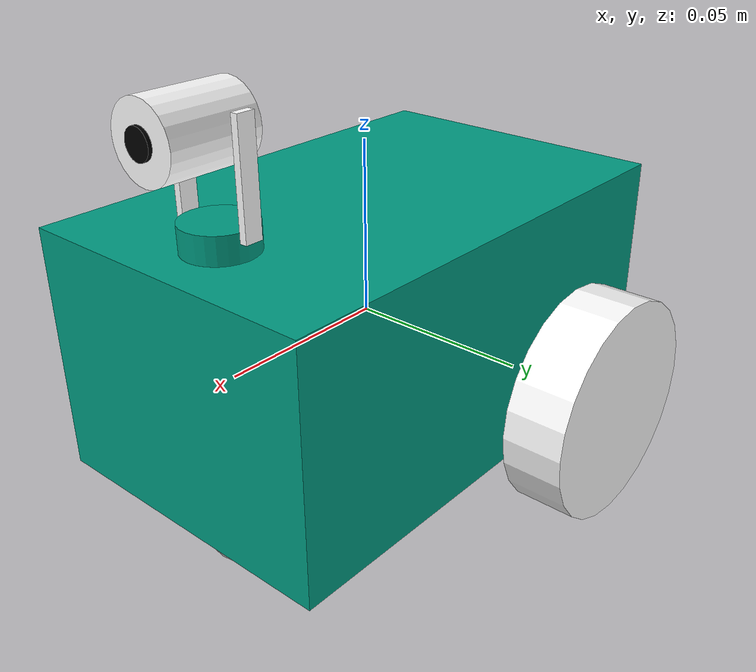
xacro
<?xml version="1.0"?>

<robot name="smart_diffbot" xmlns:xacro="http://ros.org/wiki/xacro">

  <xacro:arg name="sim" default="true"/>

  <!-- Utils -->
  <xacro:include filename="$(find smart_diffbot_description)/model/urdf/utils.urdf.xacro" />

  <!-- Robot model -->
  <xacro:include filename="$(find smart_diffbot_description)/model/urdf/model.urdf.xacro" />

  <xacro:if value="$(arg sim)">
    <!-- Simulation interface -->
    <xacro:include filename="$(find smart_diffbot_description)/model/urdf/sim_interface.urdf.xacro" />
  </xacro:if>

  <xacro:unless value="$(arg sim)">
    <!-- Real hardware -->
    <xacro:include filename="$(find smart_diffbot_description)/model/urdf/hardware_interface.urdf.xacro" />
  </xacro:unless>

</robot>

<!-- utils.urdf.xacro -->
<robot xmlns:xacro="http://ros.org/wiki/xacro">

  <!-- Materials -->
  <material name="white">
    <color rgba="1 1 1 1"/>
  </material>

  <material name="red">
    <color rgba="1 0 0 1"/>
  </material>

  <material name="green">
    <color rgba="0 1 0 1"/>
  </material>

  <material name="blue">
    <color rgba="0 0 1 1"/>
  </material>

  <material name="yellow">
    <color rgba="1 1 0 1"/>
  </material>

  <material name="black">
    <color rgba="0 0 0 1"/>
  </material>

  <material name="grey">
    <color rgba="0.5 0.5 0.5 1"/>
  </material>

  <!-- Inertia macros -->
  <xacro:macro name="box_inertia" params="m w h d">
    <inertial>
      <origin xyz="0 0 0" rpy="${pi/2} 0 ${pi/2}"/>
      <mass value="${m}"/>
      <inertia ixx="${(m/12) * (h*h + d*d)}" ixy="0.0" ixz="0.0" iyy="${(m/12) * (w*w + d*d)}" iyz="0.0" izz="${(m/12) * (w*w + h*h)}"/>
    </inertial>
  </xacro:macro>

  <xacro:macro name="cylinder_inertia" params="m r h">
    <inertial>
      <origin xyz="0 0 0" rpy="${pi/2} 0 0" />
      <mass value="${m}"/>
      <inertia ixx="${(m/12) * (3*r*r + h*h)}" ixy = "0" ixz = "0" iyy="${(m/12) * (3*r*r + h*h)}" iyz = "0" izz="${(m/2) * (r*r)}"/>
    </inertial>
  </xacro:macro>

  <xacro:macro name="sphere_inertia" params="m r">
    <inertial>
      <origin xyz="0 0 0" rpy="0 0 0" />
      <mass value="${m}"/>
      <inertia ixx="${(2*m/5) * (r*r)}" ixy = "0" ixz = "0" iyy="${(2*m/5) * (r*r)}" iyz = "0" izz="${(2*m/5) * (r*r)}"/>
    </inertial>
  </xacro:macro>

  <!-- Wheel macro -->
  <xacro:macro name="wheel" params="name width radius mass color">
    <link name="${name}">
      <visual>
        <origin xyz="0 0 0" rpy="${pi/2} 0 0"/>
        <geometry>
          <cylinder length="${width}" radius="${radius}"/>
        </geometry>
        <material name="${color}" />
      </visual>
      <collision>
        <origin xyz="0 0 0" rpy="${pi/2} 0 0"/>
        <geometry>
          <cylinder length="${width}" radius="${radius}"/>
        </geometry>
      </collision>
    <xacro:cylinder_inertia m="${mass}" r="${radius}" h="${width}"/>
    </link>
  </xacro:macro>

</robot>

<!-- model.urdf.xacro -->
<robot xmlns:xacro="http://ros.org/wiki/xacro">

  <!-- Camera model -->
  <xacro:include filename="$(find smart_diffbot_description)/model/urdf/camera.urdf.xacro" />

  <!-- Properties -->
  <xacro:property name="base_length" value="0.1415"/>
  <xacro:property name="base_width" value="0.09"/>
  <xacro:property name="base_height" value="0.07"/>
  <xacro:property name="wheel_radius" value="0.033"/>
  <xacro:property name="wheel_width" value="0.018"/>
  <xacro:property name="wheel_suspension" value="0.01"/>
  <xacro:property name="wheel_spacing" value="0.002"/>
  <xacro:property name="caster_radius" value="0.015"/>

  <!-- Links -->
  <link name="base_link">
    <visual>
      <origin xyz="0 0 0" rpy="0 0 0"/>
      <geometry>
        <box size="${base_length} ${base_width} ${base_height}" />
      </geometry>
      <material name="SaxionGreen">
        <color rgba="0 0.612 0.510 1"/>
      </material>
    </visual>
    <collision>
      <origin xyz="0 0 0" rpy="0 0 0"/>
      <geometry>
        <box size="${base_length} ${base_width} ${base_height}" />
      </geometry>
    </collision>
    <xacro:box_inertia m="30.0" w="${base_width}" d="${base_length}" h="${base_height}"/>
  </link>

  <link name="camera_mount"/>
  <xacro:camera name="camera" parent="camera_mount"/>

  <!-- Other sensor links (not visualized) -->
  <link name="imu_link"/>
  <link name="navsat_link"/>

  <!-- Wheel links -->
  <xacro:wheel name="left_wheel" width="${wheel_width}" radius="${wheel_radius}" mass="1.0" color="white"/>
  <xacro:wheel name="right_wheel" width="${wheel_width}" radius="${wheel_radius}" mass="1.0" color="white"/>

  <link name="caster">
    <visual>
      <origin xyz="0 0 0" rpy="0 0 0"/>
      <geometry>
        <sphere radius="${caster_radius}"/>
      </geometry>
      <material name="white" />
    </visual>
    <collision>
      <origin xyz="0 0 0" rpy="0 0 0"/>
      <geometry>
        <sphere radius="${caster_radius}"/>
      </geometry>
    </collision>
    <xacro:sphere_inertia m="0.25" r="${caster_radius}"/>
  </link>

  <!-- Joints -->
  <joint name="camera_mount_joint" type="fixed">
    <origin xyz="${base_length/2.0-camera_radius*2.0} 0 ${base_height/2.0}" rpy="0 0 0"/>
    <parent link="base_link"/>
    <child link="camera_mount"/>
  </joint>

  <joint name="imu_joint" type="fixed">
    <origin xyz="0 0 0" rpy="0 0 0"/>
    <parent link="base_link"/>
    <child link="imu_link"/>
  </joint>

  <joint name="navsat_joint" type="fixed">
    <origin xyz="0 0 0" rpy="0 0 0"/>
    <parent link="base_link"/>
    <child link="navsat_link"/>
  </joint>

  <joint name="left_wheel_joint" type="continuous">
    <parent link="base_link"/>
    <child link="left_wheel"/>
    <origin xyz="${-base_length/4.0} ${base_width/2.0 + wheel_width/2.0 + wheel_spacing} ${-base_height/2.0 + wheel_suspension}" rpy="0 0 0"/>
    <axis xyz="0 1 0" rpy="0 0 0"/>
  </joint>

  <joint name="right_wheel_joint" type="continuous">
    <parent link="base_link"/>
    <child link="right_wheel"/>
    <origin xyz="${-base_length/4.0} -${base_width/2.0 + wheel_width/2.0 + wheel_spacing} ${-base_height/2.0 + wheel_suspension}" rpy="0 0 0"/>
    <axis xyz="0 1 0" rpy="0 0 0"/>
  </joint>

  <joint name="caster_joint" type="fixed">
    <parent link="base_link"/>
    <child link="caster"/>
    <origin xyz="${base_length/3.0} 0 ${-base_height/2.0 + wheel_suspension - wheel_radius + caster_radius}" rpy="0 0 0"/>
  </joint>

</robot>

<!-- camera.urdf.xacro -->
<robot xmlns:xacro="http://ros.org/wiki/xacro">

  <xacro:property name="camera_link_width" value="0.002"/>
  <xacro:property name="camera_link_depth" value="0.005"/>
  <xacro:property name="camera_length" value="0.025"/>
  <xacro:property name="camera_height" value="0.01"/>
  <xacro:property name="camera_base_height" value="0.005"/>
  <xacro:property name="camera_offset" value="0.005"/>
  <xacro:property name="camera_radius" value="0.01"/>
  <xacro:property name="camera_link_length" value="0.03"/>
  <xacro:property name="lens_radius" value="0.004"/>
  <xacro:property name="lens_length" value="0.002"/>

  <!-- Wheel macro -->
  <xacro:macro name="camera" params="name parent">

    <!-- Camera body -->
    <link name="${name}_body_link">
      <visual>
        <origin xyz="${camera_length/4} 0 0" rpy="0 ${pi/2} 0"/>
        <geometry>
          <cylinder radius="${camera_radius}" length="${camera_length}"/>
        </geometry>
        <material name="white" />
      </visual>
      <collision>
        <origin xyz="0 0 0" rpy="0 0 0"/>
        <geometry>
          <cylinder radius="${camera_radius}" length="${camera_length}"/>
        </geometry>
      </collision>
      <xacro:cylinder_inertia m="1.0" r="${camera_radius}" h="${camera_length}"/>
    </link>

    <!-- Camera lens -->
    <link name="${name}_lens_link">
      <visual>
        <origin xyz="0 0 0" rpy="0 ${pi/2} 0"/>
        <geometry>
          <cylinder radius="${lens_radius}" length="${lens_length}" />
        </geometry>
        <material name="black" />
      </visual>
      <collision>
        <origin xyz="0 0 0" rpy="0 ${pi/2} 0"/>
        <geometry>
          <cylinder radius="${lens_radius}" length="${lens_length}" />
        </geometry>
      </collision>
      <xacro:cylinder_inertia m="0.1" r="${lens_radius}" h="${lens_length}"/>
    </link>

    <!-- Camera sensor link -->
    <link name="${name}_sensor_link"/>

      <!-- Camera base -->
    <link name="${name}_base">
      <visual>
        <origin xyz="0 0 ${camera_base_height/2}" rpy="0 0 0"/>
        <geometry>
          <cylinder radius="${camera_radius}" length="${camera_height}" />
        </geometry>
        <material name="SaxionGreen" />
      </visual>
      <collision>
        <origin xyz="0 0 ${camera_base_height/2}" rpy="0 0 0"/>
        <geometry>
          <cylinder radius="${camera_radius}" length="${camera_height}" />
        </geometry>
      </collision>
      <xacro:cylinder_inertia m="1.0" r="${camera_radius}" h="${camera_height}"/>
    </link>

    <!-- Camera link -->
    <link name="${name}_link">
      <visual>
        <origin xyz="0 ${camera_radius+camera_link_width/2.0} ${camera_link_length/2.0}" rpy="0 0 0"/>
        <geometry>
          <box size="${camera_link_depth} ${camera_link_width} ${camera_link_length}" />
        </geometry>
        <material name="white"/>
      </visual>
      <visual>
        <origin xyz="0 -${camera_radius+camera_link_width/2.0} ${camera_link_length/2.0}" rpy="0 0 0"/>
        <geometry>
          <box size="${camera_link_depth} ${camera_link_width} ${camera_link_length}" />
        </geometry>
        <material name="white"/>
      </visual>
      <collision>
        <origin xyz="0 ${camera_radius+camera_link_width/2.0} ${camera_link_length/2.0}" rpy="0 0 0"/>
        <geometry>
          <box size="${camera_link_depth} ${camera_link_width} ${camera_link_length}" />
        </geometry>
        <material name="white"/>
      </collision>
      <collision>
        <origin xyz="0 -${camera_radius+camera_link_width/2.0} ${camera_link_length/2.0}" rpy="0 0 0"/>
        <geometry>
          <box size="${camera_link_depth} ${camera_link_width} ${camera_link_length}" />
        </geometry>
        <material name="white"/>
      </collision>
      <xacro:box_inertia m="1.0" w="${camera_link_depth}" d="${camera_link_width}" h="${camera_link_length}"/>
    </link>

    <!-- Camera joints -->
    <joint name="${name}_sensor_joint" type="fixed">
      <origin xyz="${lens_length/2.0 + 0.1} 0 0" rpy="0 0 0"/>
      <parent link="${name}_lens_link"/>
      <child link="${name}_sensor_link"/>
    </joint>

    <joint name="${name}_lens_joint" type="fixed">
      <origin xyz="${3.0*camera_length/4.0} 0 0" rpy="0 0 0"/>
      <parent link="${name}_body_link"/>
      <child link="${name}_lens_link"/>
    </joint>

    <joint name="${name}_link_joint" type="revolute">
      <parent link="${name}_base"/>
      <child link="${name}_link"/>
      <origin xyz="0 0 ${camera_height-camera_offset}" rpy="0 0 0"/>
      <axis xyz="0 1 0" rpy="0 0 0"/>
      <limit effort="30" velocity="1.0" lower="${-pi/2}" upper="${pi/2}" />
    </joint>

    <joint name="${name}_top_joint" type="revolute">
      <parent link="${name}_link"/>
      <child link="${name}_body_link"/>
      <origin xyz="0 0 ${camera_link_length-camera_offset}" rpy="0 0 0"/>
      <axis xyz="0 1 0" rpy="0 0 0"/>
      <limit effort="30" velocity="1.0" lower="-31.415" upper="31.415" />
    </joint>

    <joint name="${name}_base_joint" type="revolute">
      <parent link="${parent}"/>
      <child link="${name}_base"/>
      <axis xyz="0 0 1" rpy="0 0 0"/>
      <limit effort="30" velocity="1.0" lower="-31.415" upper="31.415" />
    </joint>
  </xacro:macro>
</robot>
